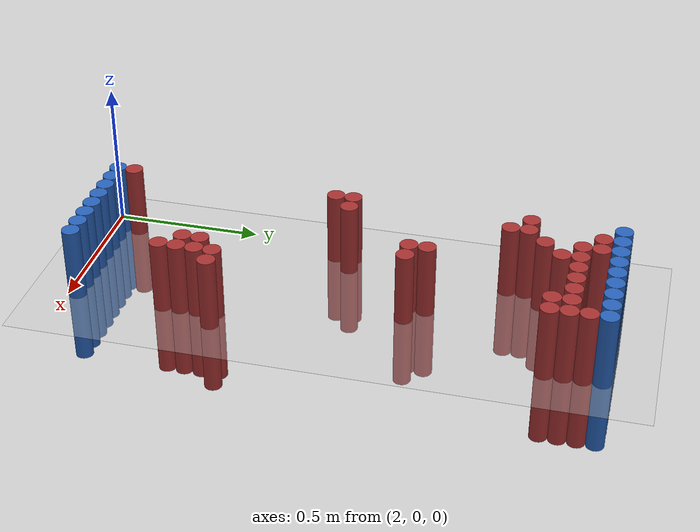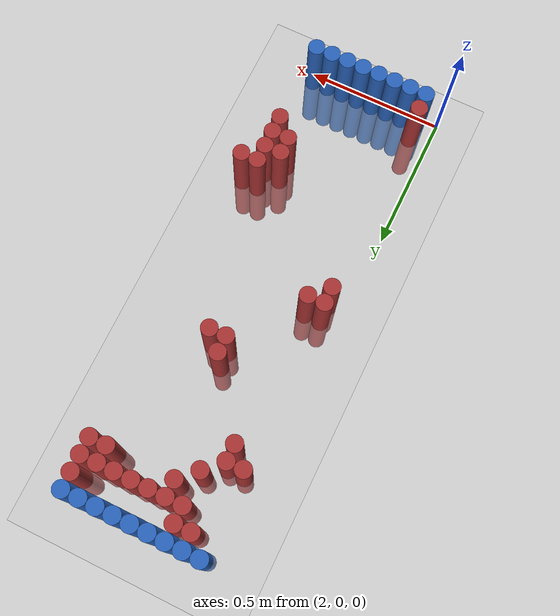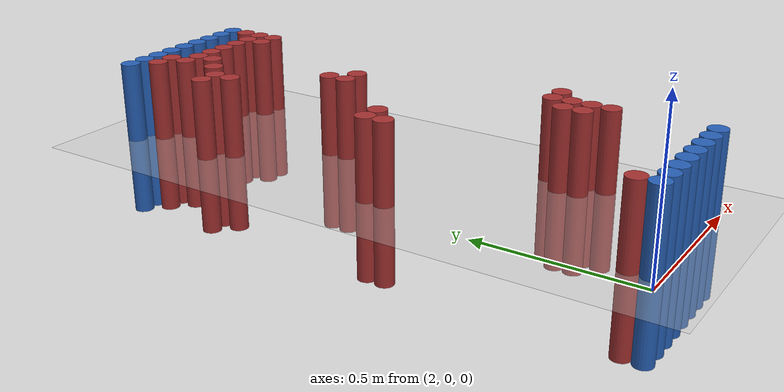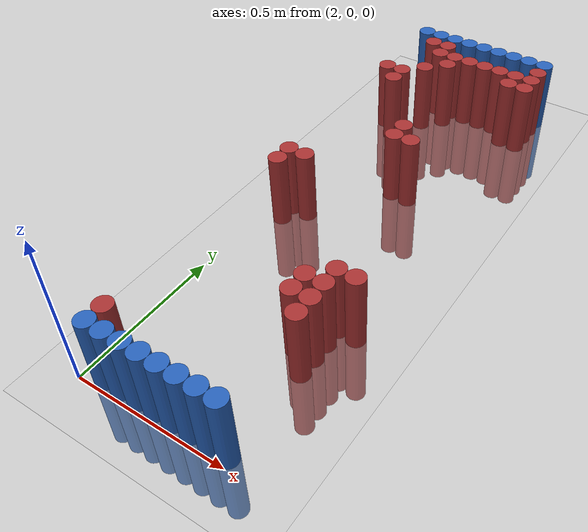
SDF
<sdf version="1.6">
 <world name="default">
  <model name="ground_plane">
   <static>1</static>
   <link name="link">
    <collision name="collision">
     <geometry><plane><normal>0 0 1</normal><size>100 100</size></plane></geometry>
     <surface><friction><ode><mu>100</mu><mu2>50</mu2></ode></friction></surface>
    </collision>
    <visual name="visual">
     <cast_shadows>0</cast_shadows>
     <geometry><plane><normal>0 0 1</normal><size>100 100</size></plane></geometry>
     <material>
      <script><uri>file://media/materials/scripts/gazebo.material</uri><name>Gazebo/Grey</name></script>
     </material>
    </visual>
   </link>
  </model>
  <model name="unit_cylinder_95">
   <static>1</static>
   <pose>2.070000 1.770000 0.000000 0.000000 0.000000 0.000000</pose>
   <link name="link">
    <inertial>
     <mass>1</mass>
     <inertia><ixx>0.145833</ixx><ixy>0</ixy><ixz>0</ixz><iyy>0.145833</iyy><iyz>0</iyz><izz>0.125</izz></inertia>
    </inertial>
    <collision name="collision">
     <geometry><cylinder><radius>0.030000</radius><length>0.5</length></cylinder></geometry>
    </collision>
    <visual name="visual">
     <geometry><cylinder><radius>0.030000</radius><length>0.5</length></cylinder></geometry>
     <material>
      <ambient>0.152000 0.379000 0.720000 1</ambient>
      <diffuse>0.152000 0.379000 0.720000 1</diffuse>
     </material>
     <material>
      <script><name>Gazebo/Grey</name><uri>file://media/materials/scripts/gazebo.material</uri></script>
     </material>
    </visual>
   </link>
  </model>
  <model name="unit_cylinder_96">
   <static>1</static>
   <pose>2.130000 1.770000 0.000000 0.000000 0.000000 0.000000</pose>
   <link name="link">
    <inertial>
     <mass>1</mass>
     <inertia><ixx>0.145833</ixx><ixy>0</ixy><ixz>0</ixz><iyy>0.145833</iyy><iyz>0</iyz><izz>0.125</izz></inertia>
    </inertial>
    <collision name="collision">
     <geometry><cylinder><radius>0.030000</radius><length>0.5</length></cylinder></geometry>
    </collision>
    <visual name="visual">
     <geometry><cylinder><radius>0.030000</radius><length>0.5</length></cylinder></geometry>
     <material>
      <ambient>0.152000 0.379000 0.720000 1</ambient>
      <diffuse>0.152000 0.379000 0.720000 1</diffuse>
     </material>
     <material>
      <script><name>Gazebo/Grey</name><uri>file://media/materials/scripts/gazebo.material</uri></script>
     </material>
    </visual>
   </link>
  </model>
  <model name="unit_cylinder_97">
   <static>1</static>
   <pose>2.190000 1.770000 0.000000 0.000000 0.000000 0.000000</pose>
   <link name="link">
    <inertial>
     <mass>1</mass>
     <inertia><ixx>0.145833</ixx><ixy>0</ixy><ixz>0</ixz><iyy>0.145833</iyy><iyz>0</iyz><izz>0.125</izz></inertia>
    </inertial>
    <collision name="collision">
     <geometry><cylinder><radius>0.030000</radius><length>0.5</length></cylinder></geometry>
    </collision>
    <visual name="visual">
     <geometry><cylinder><radius>0.030000</radius><length>0.5</length></cylinder></geometry>
     <material>
      <ambient>0.152000 0.379000 0.720000 1</ambient>
      <diffuse>0.152000 0.379000 0.720000 1</diffuse>
     </material>
     <material>
      <script><name>Gazebo/Grey</name><uri>file://media/materials/scripts/gazebo.material</uri></script>
     </material>
    </visual>
   </link>
  </model>
  <model name="unit_cylinder_98">
   <static>1</static>
   <pose>2.250000 1.770000 0.000000 0.000000 0.000000 0.000000</pose>
   <link name="link">
    <inertial>
     <mass>1</mass>
     <inertia><ixx>0.145833</ixx><ixy>0</ixy><ixz>0</ixz><iyy>0.145833</iyy><iyz>0</iyz><izz>0.125</izz></inertia>
    </inertial>
    <collision name="collision">
     <geometry><cylinder><radius>0.030000</radius><length>0.5</length></cylinder></geometry>
    </collision>
    <visual name="visual">
     <geometry><cylinder><radius>0.030000</radius><length>0.5</length></cylinder></geometry>
     <material>
      <ambient>0.152000 0.379000 0.720000 1</ambient>
      <diffuse>0.152000 0.379000 0.720000 1</diffuse>
     </material>
     <material>
      <script><name>Gazebo/Grey</name><uri>file://media/materials/scripts/gazebo.material</uri></script>
     </material>
    </visual>
   </link>
  </model>
  <model name="unit_cylinder_99">
   <static>1</static>
   <pose>2.310000 1.770000 0.000000 0.000000 0.000000 0.000000</pose>
   <link name="link">
    <inertial>
     <mass>1</mass>
     <inertia><ixx>0.145833</ixx><ixy>0</ixy><ixz>0</ixz><iyy>0.145833</iyy><iyz>0</iyz><izz>0.125</izz></inertia>
    </inertial>
    <collision name="collision">
     <geometry><cylinder><radius>0.030000</radius><length>0.5</length></cylinder></geometry>
    </collision>
    <visual name="visual">
     <geometry><cylinder><radius>0.030000</radius><length>0.5</length></cylinder></geometry>
     <material>
      <ambient>0.152000 0.379000 0.720000 1</ambient>
      <diffuse>0.152000 0.379000 0.720000 1</diffuse>
     </material>
     <material>
      <script><name>Gazebo/Grey</name><uri>file://media/materials/scripts/gazebo.material</uri></script>
     </material>
    </visual>
   </link>
  </model>
  <model name="unit_cylinder_100">
   <static>1</static>
   <pose>2.370000 1.770000 0.000000 0.000000 0.000000 0.000000</pose>
   <link name="link">
    <inertial>
     <mass>1</mass>
     <inertia><ixx>0.145833</ixx><ixy>0</ixy><ixz>0</ixz><iyy>0.145833</iyy><iyz>0</iyz><izz>0.125</izz></inertia>
    </inertial>
    <collision name="collision">
     <geometry><cylinder><radius>0.030000</radius><length>0.5</length></cylinder></geometry>
    </collision>
    <visual name="visual">
     <geometry><cylinder><radius>0.030000</radius><length>0.5</length></cylinder></geometry>
     <material>
      <ambient>0.152000 0.379000 0.720000 1</ambient>
      <diffuse>0.152000 0.379000 0.720000 1</diffuse>
     </material>
     <material>
      <script><name>Gazebo/Grey</name><uri>file://media/materials/scripts/gazebo.material</uri></script>
     </material>
    </visual>
   </link>
  </model>
  <model name="unit_cylinder_101">
   <static>1</static>
   <pose>2.430000 1.770000 0.000000 0.000000 0.000000 0.000000</pose>
   <link name="link">
    <inertial>
     <mass>1</mass>
     <inertia><ixx>0.145833</ixx><ixy>0</ixy><ixz>0</ixz><iyy>0.145833</iyy><iyz>0</iyz><izz>0.125</izz></inertia>
    </inertial>
    <collision name="collision">
     <geometry><cylinder><radius>0.030000</radius><length>0.5</length></cylinder></geometry>
    </collision>
    <visual name="visual">
     <geometry><cylinder><radius>0.030000</radius><length>0.5</length></cylinder></geometry>
     <material>
      <ambient>0.152000 0.379000 0.720000 1</ambient>
      <diffuse>0.152000 0.379000 0.720000 1</diffuse>
     </material>
     <material>
      <script><name>Gazebo/Grey</name><uri>file://media/materials/scripts/gazebo.material</uri></script>
     </material>
    </visual>
   </link>
  </model>
  <model name="unit_cylinder_102">
   <static>1</static>
   <pose>2.490000 1.770000 0.000000 0.000000 0.000000 0.000000</pose>
   <link name="link">
    <inertial>
     <mass>1</mass>
     <inertia><ixx>0.145833</ixx><ixy>0</ixy><ixz>0</ixz><iyy>0.145833</iyy><iyz>0</iyz><izz>0.125</izz></inertia>
    </inertial>
    <collision name="collision">
     <geometry><cylinder><radius>0.030000</radius><length>0.5</length></cylinder></geometry>
    </collision>
    <visual name="visual">
     <geometry><cylinder><radius>0.030000</radius><length>0.5</length></cylinder></geometry>
     <material>
      <ambient>0.152000 0.379000 0.720000 1</ambient>
      <diffuse>0.152000 0.379000 0.720000 1</diffuse>
     </material>
     <material>
      <script><name>Gazebo/Grey</name><uri>file://media/materials/scripts/gazebo.material</uri></script>
     </material>
    </visual>
   </link>
  </model>
  <model name="unit_cylinder_103">
   <static>1</static>
   <pose>2.550000 1.770000 0.000000 0.000000 0.000000 0.000000</pose>
   <link name="link">
    <inertial>
     <mass>1</mass>
     <inertia><ixx>0.145833</ixx><ixy>0</ixy><ixz>0</ixz><iyy>0.145833</iyy><iyz>0</iyz><izz>0.125</izz></inertia>
    </inertial>
    <collision name="collision">
     <geometry><cylinder><radius>0.030000</radius><length>0.5</length></cylinder></geometry>
    </collision>
    <visual name="visual">
     <geometry><cylinder><radius>0.030000</radius><length>0.5</length></cylinder></geometry>
     <material>
      <ambient>0.152000 0.379000 0.720000 1</ambient>
      <diffuse>0.152000 0.379000 0.720000 1</diffuse>
     </material>
     <material>
      <script><name>Gazebo/Grey</name><uri>file://media/materials/scripts/gazebo.material</uri></script>
     </material>
    </visual>
   </link>
  </model>
  <model name="unit_cylinder_125">
   <static>1</static>
   <pose>2.130000 1.710000 0.000000 0.000000 0.000000 0.000000</pose>
   <link name="link">
    <inertial>
     <mass>1</mass>
     <inertia><ixx>0.145833</ixx><ixy>0</ixy><ixz>0</ixz><iyy>0.145833</iyy><iyz>0</iyz><izz>0.125</izz></inertia>
    </inertial>
    <collision name="collision">
     <geometry><cylinder><radius>0.030000</radius><length>0.5</length></cylinder></geometry>
    </collision>
    <visual name="visual">
     <geometry><cylinder><radius>0.030000</radius><length>0.5</length></cylinder></geometry>
     <material>
      <ambient>0.648000 0.192000 0.192000 1</ambient>
      <diffuse>0.648000 0.192000 0.192000 1</diffuse>
     </material>
     <material>
      <script><name>Gazebo/Grey</name><uri>file://media/materials/scripts/gazebo.material</uri></script>
     </material>
    </visual>
   </link>
  </model>
  <model name="unit_cylinder_126">
   <static>1</static>
   <pose>2.190000 1.710000 0.000000 0.000000 0.000000 0.000000</pose>
   <link name="link">
    <inertial>
     <mass>1</mass>
     <inertia><ixx>0.145833</ixx><ixy>0</ixy><ixz>0</ixz><iyy>0.145833</iyy><iyz>0</iyz><izz>0.125</izz></inertia>
    </inertial>
    <collision name="collision">
     <geometry><cylinder><radius>0.030000</radius><length>0.5</length></cylinder></geometry>
    </collision>
    <visual name="visual">
     <geometry><cylinder><radius>0.030000</radius><length>0.5</length></cylinder></geometry>
     <material>
      <ambient>0.648000 0.192000 0.192000 1</ambient>
      <diffuse>0.648000 0.192000 0.192000 1</diffuse>
     </material>
     <material>
      <script><name>Gazebo/Grey</name><uri>file://media/materials/scripts/gazebo.material</uri></script>
     </material>
    </visual>
   </link>
  </model>
  <model name="unit_cylinder_127">
   <static>1</static>
   <pose>2.550000 1.710000 0.000000 0.000000 0.000000 0.000000</pose>
   <link name="link">
    <inertial>
     <mass>1</mass>
     <inertia><ixx>0.145833</ixx><ixy>0</ixy><ixz>0</ixz><iyy>0.145833</iyy><iyz>0</iyz><izz>0.125</izz></inertia>
    </inertial>
    <collision name="collision">
     <geometry><cylinder><radius>0.030000</radius><length>0.5</length></cylinder></geometry>
    </collision>
    <visual name="visual">
     <geometry><cylinder><radius>0.030000</radius><length>0.5</length></cylinder></geometry>
     <material>
      <ambient>0.648000 0.192000 0.192000 1</ambient>
      <diffuse>0.648000 0.192000 0.192000 1</diffuse>
     </material>
     <material>
      <script><name>Gazebo/Grey</name><uri>file://media/materials/scripts/gazebo.material</uri></script>
     </material>
    </visual>
   </link>
  </model>
  <model name="unit_cylinder_138">
   <static>1</static>
   <pose>2.190000 1.650000 0.000000 0.000000 0.000000 0.000000</pose>
   <link name="link">
    <inertial>
     <mass>1</mass>
     <inertia><ixx>0.145833</ixx><ixy>0</ixy><ixz>0</ixz><iyy>0.145833</iyy><iyz>0</iyz><izz>0.125</izz></inertia>
    </inertial>
    <collision name="collision">
     <geometry><cylinder><radius>0.030000</radius><length>0.5</length></cylinder></geometry>
    </collision>
    <visual name="visual">
     <geometry><cylinder><radius>0.030000</radius><length>0.5</length></cylinder></geometry>
     <material>
      <ambient>0.648000 0.192000 0.192000 1</ambient>
      <diffuse>0.648000 0.192000 0.192000 1</diffuse>
     </material>
     <material>
      <script><name>Gazebo/Grey</name><uri>file://media/materials/scripts/gazebo.material</uri></script>
     </material>
    </visual>
   </link>
  </model>
  <model name="unit_cylinder_139">
   <static>1</static>
   <pose>2.250000 1.650000 0.000000 0.000000 0.000000 0.000000</pose>
   <link name="link">
    <inertial>
     <mass>1</mass>
     <inertia><ixx>0.145833</ixx><ixy>0</ixy><ixz>0</ixz><iyy>0.145833</iyy><iyz>0</iyz><izz>0.125</izz></inertia>
    </inertial>
    <collision name="collision">
     <geometry><cylinder><radius>0.030000</radius><length>0.5</length></cylinder></geometry>
    </collision>
    <visual name="visual">
     <geometry><cylinder><radius>0.030000</radius><length>0.5</length></cylinder></geometry>
     <material>
      <ambient>0.648000 0.192000 0.192000 1</ambient>
      <diffuse>0.648000 0.192000 0.192000 1</diffuse>
     </material>
     <material>
      <script><name>Gazebo/Grey</name><uri>file://media/materials/scripts/gazebo.material</uri></script>
     </material>
    </visual>
   </link>
  </model>
  <model name="unit_cylinder_140">
   <static>1</static>
   <pose>2.310000 1.650000 0.000000 0.000000 0.000000 0.000000</pose>
   <link name="link">
    <inertial>
     <mass>1</mass>
     <inertia><ixx>0.145833</ixx><ixy>0</ixy><ixz>0</ixz><iyy>0.145833</iyy><iyz>0</iyz><izz>0.125</izz></inertia>
    </inertial>
    <collision name="collision">
     <geometry><cylinder><radius>0.030000</radius><length>0.5</length></cylinder></geometry>
    </collision>
    <visual name="visual">
     <geometry><cylinder><radius>0.030000</radius><length>0.5</length></cylinder></geometry>
     <material>
      <ambient>0.648000 0.192000 0.192000 1</ambient>
      <diffuse>0.648000 0.192000 0.192000 1</diffuse>
     </material>
     <material>
      <script><name>Gazebo/Grey</name><uri>file://media/materials/scripts/gazebo.material</uri></script>
     </material>
    </visual>
   </link>
  </model>
  <model name="unit_cylinder_141">
   <static>1</static>
   <pose>2.370000 1.650000 0.000000 0.000000 0.000000 0.000000</pose>
   <link name="link">
    <inertial>
     <mass>1</mass>
     <inertia><ixx>0.145833</ixx><ixy>0</ixy><ixz>0</ixz><iyy>0.145833</iyy><iyz>0</iyz><izz>0.125</izz></inertia>
    </inertial>
    <collision name="collision">
     <geometry><cylinder><radius>0.030000</radius><length>0.5</length></cylinder></geometry>
    </collision>
    <visual name="visual">
     <geometry><cylinder><radius>0.030000</radius><length>0.5</length></cylinder></geometry>
     <material>
      <ambient>0.648000 0.192000 0.192000 1</ambient>
      <diffuse>0.648000 0.192000 0.192000 1</diffuse>
     </material>
     <material>
      <script><name>Gazebo/Grey</name><uri>file://media/materials/scripts/gazebo.material</uri></script>
     </material>
    </visual>
   </link>
  </model>
  <model name="unit_cylinder_142">
   <static>1</static>
   <pose>2.430000 1.650000 0.000000 0.000000 0.000000 0.000000</pose>
   <link name="link">
    <inertial>
     <mass>1</mass>
     <inertia><ixx>0.145833</ixx><ixy>0</ixy><ixz>0</ixz><iyy>0.145833</iyy><iyz>0</iyz><izz>0.125</izz></inertia>
    </inertial>
    <collision name="collision">
     <geometry><cylinder><radius>0.030000</radius><length>0.5</length></cylinder></geometry>
    </collision>
    <visual name="visual">
     <geometry><cylinder><radius>0.030000</radius><length>0.5</length></cylinder></geometry>
     <material>
      <ambient>0.648000 0.192000 0.192000 1</ambient>
      <diffuse>0.648000 0.192000 0.192000 1</diffuse>
     </material>
     <material>
      <script><name>Gazebo/Grey</name><uri>file://media/materials/scripts/gazebo.material</uri></script>
     </material>
    </visual>
   </link>
  </model>
  <model name="unit_cylinder_143">
   <static>1</static>
   <pose>2.490000 1.650000 0.000000 0.000000 0.000000 0.000000</pose>
   <link name="link">
    <inertial>
     <mass>1</mass>
     <inertia><ixx>0.145833</ixx><ixy>0</ixy><ixz>0</ixz><iyy>0.145833</iyy><iyz>0</iyz><izz>0.125</izz></inertia>
    </inertial>
    <collision name="collision">
     <geometry><cylinder><radius>0.030000</radius><length>0.5</length></cylinder></geometry>
    </collision>
    <visual name="visual">
     <geometry><cylinder><radius>0.030000</radius><length>0.5</length></cylinder></geometry>
     <material>
      <ambient>0.648000 0.192000 0.192000 1</ambient>
      <diffuse>0.648000 0.192000 0.192000 1</diffuse>
     </material>
     <material>
      <script><name>Gazebo/Grey</name><uri>file://media/materials/scripts/gazebo.material</uri></script>
     </material>
    </visual>
   </link>
  </model>
  <model name="unit_cylinder_144">
   <static>1</static>
   <pose>2.550000 1.650000 0.000000 0.000000 0.000000 0.000000</pose>
   <link name="link">
    <inertial>
     <mass>1</mass>
     <inertia><ixx>0.145833</ixx><ixy>0</ixy><ixz>0</ixz><iyy>0.145833</iyy><iyz>0</iyz><izz>0.125</izz></inertia>
    </inertial>
    <collision name="collision">
     <geometry><cylinder><radius>0.030000</radius><length>0.5</length></cylinder></geometry>
    </collision>
    <visual name="visual">
     <geometry><cylinder><radius>0.030000</radius><length>0.5</length></cylinder></geometry>
     <material>
      <ambient>0.648000 0.192000 0.192000 1</ambient>
      <diffuse>0.648000 0.192000 0.192000 1</diffuse>
     </material>
     <material>
      <script><name>Gazebo/Grey</name><uri>file://media/materials/scripts/gazebo.material</uri></script>
     </material>
    </visual>
   </link>
  </model>
  <model name="unit_cylinder_145">
   <static>1</static>
   <pose>2.250000 1.590000 0.000000 0.000000 0.000000 0.000000</pose>
   <link name="link">
    <inertial>
     <mass>1</mass>
     <inertia><ixx>0.145833</ixx><ixy>0</ixy><ixz>0</ixz><iyy>0.145833</iyy><iyz>0</iyz><izz>0.125</izz></inertia>
    </inertial>
    <collision name="collision">
     <geometry><cylinder><radius>0.030000</radius><length>0.5</length></cylinder></geometry>
    </collision>
    <visual name="visual">
     <geometry><cylinder><radius>0.030000</radius><length>0.5</length></cylinder></geometry>
     <material>
      <ambient>0.648000 0.192000 0.192000 1</ambient>
      <diffuse>0.648000 0.192000 0.192000 1</diffuse>
     </material>
     <material>
      <script><name>Gazebo/Grey</name><uri>file://media/materials/scripts/gazebo.material</uri></script>
     </material>
    </visual>
   </link>
  </model>
  <model name="unit_cylinder_146">
   <static>1</static>
   <pose>2.490000 1.590000 0.000000 0.000000 0.000000 0.000000</pose>
   <link name="link">
    <inertial>
     <mass>1</mass>
     <inertia><ixx>0.145833</ixx><ixy>0</ixy><ixz>0</ixz><iyy>0.145833</iyy><iyz>0</iyz><izz>0.125</izz></inertia>
    </inertial>
    <collision name="collision">
     <geometry><cylinder><radius>0.030000</radius><length>0.5</length></cylinder></geometry>
    </collision>
    <visual name="visual">
     <geometry><cylinder><radius>0.030000</radius><length>0.5</length></cylinder></geometry>
     <material>
      <ambient>0.648000 0.192000 0.192000 1</ambient>
      <diffuse>0.648000 0.192000 0.192000 1</diffuse>
     </material>
     <material>
      <script><name>Gazebo/Grey</name><uri>file://media/materials/scripts/gazebo.material</uri></script>
     </material>
    </visual>
   </link>
  </model>
  <model name="unit_cylinder_147">
   <static>1</static>
   <pose>2.550000 1.590000 0.000000 0.000000 0.000000 0.000000</pose>
   <link name="link">
    <inertial>
     <mass>1</mass>
     <inertia><ixx>0.145833</ixx><ixy>0</ixy><ixz>0</ixz><iyy>0.145833</iyy><iyz>0</iyz><izz>0.125</izz></inertia>
    </inertial>
    <collision name="collision">
     <geometry><cylinder><radius>0.030000</radius><length>0.5</length></cylinder></geometry>
    </collision>
    <visual name="visual">
     <geometry><cylinder><radius>0.030000</radius><length>0.5</length></cylinder></geometry>
     <material>
      <ambient>0.648000 0.192000 0.192000 1</ambient>
      <diffuse>0.648000 0.192000 0.192000 1</diffuse>
     </material>
     <material>
      <script><name>Gazebo/Grey</name><uri>file://media/materials/scripts/gazebo.material</uri></script>
     </material>
    </visual>
   </link>
  </model>
  <model name="unit_cylinder_150">
   <static>1</static>
   <pose>2.190000 1.530000 0.000000 0.000000 0.000000 0.000000</pose>
   <link name="link">
    <inertial>
     <mass>1</mass>
     <inertia><ixx>0.145833</ixx><ixy>0</ixy><ixz>0</ixz><iyy>0.145833</iyy><iyz>0</iyz><izz>0.125</izz></inertia>
    </inertial>
    <collision name="collision">
     <geometry><cylinder><radius>0.030000</radius><length>0.5</length></cylinder></geometry>
    </collision>
    <visual name="visual">
     <geometry><cylinder><radius>0.030000</radius><length>0.5</length></cylinder></geometry>
     <material>
      <ambient>0.648000 0.192000 0.192000 1</ambient>
      <diffuse>0.648000 0.192000 0.192000 1</diffuse>
     </material>
     <material>
      <script><name>Gazebo/Grey</name><uri>file://media/materials/scripts/gazebo.material</uri></script>
     </material>
    </visual>
   </link>
  </model>
  <model name="unit_cylinder_159">
   <static>1</static>
   <pose>2.070000 1.470000 0.000000 0.000000 0.000000 0.000000</pose>
   <link name="link">
    <inertial>
     <mass>1</mass>
     <inertia><ixx>0.145833</ixx><ixy>0</ixy><ixz>0</ixz><iyy>0.145833</iyy><iyz>0</iyz><izz>0.125</izz></inertia>
    </inertial>
    <collision name="collision">
     <geometry><cylinder><radius>0.030000</radius><length>0.5</length></cylinder></geometry>
    </collision>
    <visual name="visual">
     <geometry><cylinder><radius>0.030000</radius><length>0.5</length></cylinder></geometry>
     <material>
      <ambient>0.648000 0.192000 0.192000 1</ambient>
      <diffuse>0.648000 0.192000 0.192000 1</diffuse>
     </material>
     <material>
      <script><name>Gazebo/Grey</name><uri>file://media/materials/scripts/gazebo.material</uri></script>
     </material>
    </visual>
   </link>
  </model>
  <model name="unit_cylinder_160">
   <static>1</static>
   <pose>2.130000 1.470000 0.000000 0.000000 0.000000 0.000000</pose>
   <link name="link">
    <inertial>
     <mass>1</mass>
     <inertia><ixx>0.145833</ixx><ixy>0</ixy><ixz>0</ixz><iyy>0.145833</iyy><iyz>0</iyz><izz>0.125</izz></inertia>
    </inertial>
    <collision name="collision">
     <geometry><cylinder><radius>0.030000</radius><length>0.5</length></cylinder></geometry>
    </collision>
    <visual name="visual">
     <geometry><cylinder><radius>0.030000</radius><length>0.5</length></cylinder></geometry>
     <material>
      <ambient>0.648000 0.192000 0.192000 1</ambient>
      <diffuse>0.648000 0.192000 0.192000 1</diffuse>
     </material>
     <material>
      <script><name>Gazebo/Grey</name><uri>file://media/materials/scripts/gazebo.material</uri></script>
     </material>
    </visual>
   </link>
  </model>
  <model name="unit_cylinder_165">
   <static>1</static>
   <pose>2.130000 1.410000 0.000000 0.000000 0.000000 0.000000</pose>
   <link name="link">
    <inertial>
     <mass>1</mass>
     <inertia><ixx>0.145833</ixx><ixy>0</ixy><ixz>0</ixz><iyy>0.145833</iyy><iyz>0</iyz><izz>0.125</izz></inertia>
    </inertial>
    <collision name="collision">
     <geometry><cylinder><radius>0.030000</radius><length>0.5</length></cylinder></geometry>
    </collision>
    <visual name="visual">
     <geometry><cylinder><radius>0.030000</radius><length>0.5</length></cylinder></geometry>
     <material>
      <ambient>0.648000 0.192000 0.192000 1</ambient>
      <diffuse>0.648000 0.192000 0.192000 1</diffuse>
     </material>
     <material>
      <script><name>Gazebo/Grey</name><uri>file://media/materials/scripts/gazebo.material</uri></script>
     </material>
    </visual>
   </link>
  </model>
  <model name="unit_cylinder_183">
   <static>1</static>
   <pose>2.310000 1.170000 0.000000 0.000000 0.000000 0.000000</pose>
   <link name="link">
    <inertial>
     <mass>1</mass>
     <inertia><ixx>0.145833</ixx><ixy>0</ixy><ixz>0</ixz><iyy>0.145833</iyy><iyz>0</iyz><izz>0.125</izz></inertia>
    </inertial>
    <collision name="collision">
     <geometry><cylinder><radius>0.030000</radius><length>0.5</length></cylinder></geometry>
    </collision>
    <visual name="visual">
     <geometry><cylinder><radius>0.030000</radius><length>0.5</length></cylinder></geometry>
     <material>
      <ambient>0.648000 0.192000 0.192000 1</ambient>
      <diffuse>0.648000 0.192000 0.192000 1</diffuse>
     </material>
     <material>
      <script><name>Gazebo/Grey</name><uri>file://media/materials/scripts/gazebo.material</uri></script>
     </material>
    </visual>
   </link>
  </model>
  <model name="unit_cylinder_187">
   <static>1</static>
   <pose>2.310000 1.110000 0.000000 0.000000 0.000000 0.000000</pose>
   <link name="link">
    <inertial>
     <mass>1</mass>
     <inertia><ixx>0.145833</ixx><ixy>0</ixy><ixz>0</ixz><iyy>0.145833</iyy><iyz>0</iyz><izz>0.125</izz></inertia>
    </inertial>
    <collision name="collision">
     <geometry><cylinder><radius>0.030000</radius><length>0.5</length></cylinder></geometry>
    </collision>
    <visual name="visual">
     <geometry><cylinder><radius>0.030000</radius><length>0.5</length></cylinder></geometry>
     <material>
      <ambient>0.648000 0.192000 0.192000 1</ambient>
      <diffuse>0.648000 0.192000 0.192000 1</diffuse>
     </material>
     <material>
      <script><name>Gazebo/Grey</name><uri>file://media/materials/scripts/gazebo.material</uri></script>
     </material>
    </visual>
   </link>
  </model>
  <model name="unit_cylinder_188">
   <static>1</static>
   <pose>2.370000 1.110000 0.000000 0.000000 0.000000 0.000000</pose>
   <link name="link">
    <inertial>
     <mass>1</mass>
     <inertia><ixx>0.145833</ixx><ixy>0</ixy><ixz>0</ixz><iyy>0.145833</iyy><iyz>0</iyz><izz>0.125</izz></inertia>
    </inertial>
    <collision name="collision">
     <geometry><cylinder><radius>0.030000</radius><length>0.5</length></cylinder></geometry>
    </collision>
    <visual name="visual">
     <geometry><cylinder><radius>0.030000</radius><length>0.5</length></cylinder></geometry>
     <material>
      <ambient>0.648000 0.192000 0.192000 1</ambient>
      <diffuse>0.648000 0.192000 0.192000 1</diffuse>
     </material>
     <material>
      <script><name>Gazebo/Grey</name><uri>file://media/materials/scripts/gazebo.material</uri></script>
     </material>
    </visual>
   </link>
  </model>
  <model name="unit_cylinder_202">
   <static>1</static>
   <pose>2.070000 0.870000 0.000000 0.000000 0.000000 0.000000</pose>
   <link name="link">
    <inertial>
     <mass>1</mass>
     <inertia><ixx>0.145833</ixx><ixy>0</ixy><ixz>0</ixz><iyy>0.145833</iyy><iyz>0</iyz><izz>0.125</izz></inertia>
    </inertial>
    <collision name="collision">
     <geometry><cylinder><radius>0.030000</radius><length>0.5</length></cylinder></geometry>
    </collision>
    <visual name="visual">
     <geometry><cylinder><radius>0.030000</radius><length>0.5</length></cylinder></geometry>
     <material>
      <ambient>0.648000 0.192000 0.192000 1</ambient>
      <diffuse>0.648000 0.192000 0.192000 1</diffuse>
     </material>
     <material>
      <script><name>Gazebo/Grey</name><uri>file://media/materials/scripts/gazebo.material</uri></script>
     </material>
    </visual>
   </link>
  </model>
  <model name="unit_cylinder_203">
   <static>1</static>
   <pose>2.130000 0.870000 0.000000 0.000000 0.000000 0.000000</pose>
   <link name="link">
    <inertial>
     <mass>1</mass>
     <inertia><ixx>0.145833</ixx><ixy>0</ixy><ixz>0</ixz><iyy>0.145833</iyy><iyz>0</iyz><izz>0.125</izz></inertia>
    </inertial>
    <collision name="collision">
     <geometry><cylinder><radius>0.030000</radius><length>0.5</length></cylinder></geometry>
    </collision>
    <visual name="visual">
     <geometry><cylinder><radius>0.030000</radius><length>0.5</length></cylinder></geometry>
     <material>
      <ambient>0.648000 0.192000 0.192000 1</ambient>
      <diffuse>0.648000 0.192000 0.192000 1</diffuse>
     </material>
     <material>
      <script><name>Gazebo/Grey</name><uri>file://media/materials/scripts/gazebo.material</uri></script>
     </material>
    </visual>
   </link>
  </model>
  <model name="unit_cylinder_207">
   <static>1</static>
   <pose>2.070000 0.810000 0.000000 0.000000 0.000000 0.000000</pose>
   <link name="link">
    <inertial>
     <mass>1</mass>
     <inertia><ixx>0.145833</ixx><ixy>0</ixy><ixz>0</ixz><iyy>0.145833</iyy><iyz>0</iyz><izz>0.125</izz></inertia>
    </inertial>
    <collision name="collision">
     <geometry><cylinder><radius>0.030000</radius><length>0.5</length></cylinder></geometry>
    </collision>
    <visual name="visual">
     <geometry><cylinder><radius>0.030000</radius><length>0.5</length></cylinder></geometry>
     <material>
      <ambient>0.648000 0.192000 0.192000 1</ambient>
      <diffuse>0.648000 0.192000 0.192000 1</diffuse>
     </material>
     <material>
      <script><name>Gazebo/Grey</name><uri>file://media/materials/scripts/gazebo.material</uri></script>
     </material>
    </visual>
   </link>
  </model>
  <model name="unit_cylinder_213">
   <static>1</static>
   <pose>2.490000 0.510000 0.000000 0.000000 0.000000 0.000000</pose>
   <link name="link">
    <inertial>
     <mass>1</mass>
     <inertia><ixx>0.145833</ixx><ixy>0</ixy><ixz>0</ixz><iyy>0.145833</iyy><iyz>0</iyz><izz>0.125</izz></inertia>
    </inertial>
    <collision name="collision">
     <geometry><cylinder><radius>0.030000</radius><length>0.5</length></cylinder></geometry>
    </collision>
    <visual name="visual">
     <geometry><cylinder><radius>0.030000</radius><length>0.5</length></cylinder></geometry>
     <material>
      <ambient>0.648000 0.192000 0.192000 1</ambient>
      <diffuse>0.648000 0.192000 0.192000 1</diffuse>
     </material>
     <material>
      <script><name>Gazebo/Grey</name><uri>file://media/materials/scripts/gazebo.material</uri></script>
     </material>
    </visual>
   </link>
  </model>
  <model name="unit_cylinder_214">
   <static>1</static>
   <pose>2.550000 0.510000 0.000000 0.000000 0.000000 0.000000</pose>
   <link name="link">
    <inertial>
     <mass>1</mass>
     <inertia><ixx>0.145833</ixx><ixy>0</ixy><ixz>0</ixz><iyy>0.145833</iyy><iyz>0</iyz><izz>0.125</izz></inertia>
    </inertial>
    <collision name="collision">
     <geometry><cylinder><radius>0.030000</radius><length>0.5</length></cylinder></geometry>
    </collision>
    <visual name="visual">
     <geometry><cylinder><radius>0.030000</radius><length>0.5</length></cylinder></geometry>
     <material>
      <ambient>0.648000 0.192000 0.192000 1</ambient>
      <diffuse>0.648000 0.192000 0.192000 1</diffuse>
     </material>
     <material>
      <script><name>Gazebo/Grey</name><uri>file://media/materials/scripts/gazebo.material</uri></script>
     </material>
    </visual>
   </link>
  </model>
  <model name="unit_cylinder_217">
   <static>1</static>
   <pose>2.430000 0.450000 0.000000 0.000000 0.000000 0.000000</pose>
   <link name="link">
    <inertial>
     <mass>1</mass>
     <inertia><ixx>0.145833</ixx><ixy>0</ixy><ixz>0</ixz><iyy>0.145833</iyy><iyz>0</iyz><izz>0.125</izz></inertia>
    </inertial>
    <collision name="collision">
     <geometry><cylinder><radius>0.030000</radius><length>0.5</length></cylinder></geometry>
    </collision>
    <visual name="visual">
     <geometry><cylinder><radius>0.030000</radius><length>0.5</length></cylinder></geometry>
     <material>
      <ambient>0.648000 0.192000 0.192000 1</ambient>
      <diffuse>0.648000 0.192000 0.192000 1</diffuse>
     </material>
     <material>
      <script><name>Gazebo/Grey</name><uri>file://media/materials/scripts/gazebo.material</uri></script>
     </material>
    </visual>
   </link>
  </model>
  <model name="unit_cylinder_218">
   <static>1</static>
   <pose>2.490000 0.450000 0.000000 0.000000 0.000000 0.000000</pose>
   <link name="link">
    <inertial>
     <mass>1</mass>
     <inertia><ixx>0.145833</ixx><ixy>0</ixy><ixz>0</ixz><iyy>0.145833</iyy><iyz>0</iyz><izz>0.125</izz></inertia>
    </inertial>
    <collision name="collision">
     <geometry><cylinder><radius>0.030000</radius><length>0.5</length></cylinder></geometry>
    </collision>
    <visual name="visual">
     <geometry><cylinder><radius>0.030000</radius><length>0.5</length></cylinder></geometry>
     <material>
      <ambient>0.648000 0.192000 0.192000 1</ambient>
      <diffuse>0.648000 0.192000 0.192000 1</diffuse>
     </material>
     <material>
      <script><name>Gazebo/Grey</name><uri>file://media/materials/scripts/gazebo.material</uri></script>
     </material>
    </visual>
   </link>
  </model>
  <model name="unit_cylinder_222">
   <static>1</static>
   <pose>2.430000 0.390000 0.000000 0.000000 0.000000 0.000000</pose>
   <link name="link">
    <inertial>
     <mass>1</mass>
     <inertia><ixx>0.145833</ixx><ixy>0</ixy><ixz>0</ixz><iyy>0.145833</iyy><iyz>0</iyz><izz>0.125</izz></inertia>
    </inertial>
    <collision name="collision">
     <geometry><cylinder><radius>0.030000</radius><length>0.5</length></cylinder></geometry>
    </collision>
    <visual name="visual">
     <geometry><cylinder><radius>0.030000</radius><length>0.5</length></cylinder></geometry>
     <material>
      <ambient>0.648000 0.192000 0.192000 1</ambient>
      <diffuse>0.648000 0.192000 0.192000 1</diffuse>
     </material>
     <material>
      <script><name>Gazebo/Grey</name><uri>file://media/materials/scripts/gazebo.material</uri></script>
     </material>
    </visual>
   </link>
  </model>
  <model name="unit_cylinder_223">
   <static>1</static>
   <pose>2.490000 0.390000 0.000000 0.000000 0.000000 0.000000</pose>
   <link name="link">
    <inertial>
     <mass>1</mass>
     <inertia><ixx>0.145833</ixx><ixy>0</ixy><ixz>0</ixz><iyy>0.145833</iyy><iyz>0</iyz><izz>0.125</izz></inertia>
    </inertial>
    <collision name="collision">
     <geometry><cylinder><radius>0.030000</radius><length>0.5</length></cylinder></geometry>
    </collision>
    <visual name="visual">
     <geometry><cylinder><radius>0.030000</radius><length>0.5</length></cylinder></geometry>
     <material>
      <ambient>0.648000 0.192000 0.192000 1</ambient>
      <diffuse>0.648000 0.192000 0.192000 1</diffuse>
     </material>
     <material>
      <script><name>Gazebo/Grey</name><uri>file://media/materials/scripts/gazebo.material</uri></script>
     </material>
    </visual>
   </link>
  </model>
  <model name="unit_cylinder_225">
   <static>1</static>
   <pose>2.490000 0.330000 0.000000 0.000000 0.000000 0.000000</pose>
   <link name="link">
    <inertial>
     <mass>1</mass>
     <inertia><ixx>0.145833</ixx><ixy>0</ixy><ixz>0</ixz><iyy>0.145833</iyy><iyz>0</iyz><izz>0.125</izz></inertia>
    </inertial>
    <collision name="collision">
     <geometry><cylinder><radius>0.030000</radius><length>0.5</length></cylinder></geometry>
    </collision>
    <visual name="visual">
     <geometry><cylinder><radius>0.030000</radius><length>0.5</length></cylinder></geometry>
     <material>
      <ambient>0.648000 0.192000 0.192000 1</ambient>
      <diffuse>0.648000 0.192000 0.192000 1</diffuse>
     </material>
     <material>
      <script><name>Gazebo/Grey</name><uri>file://media/materials/scripts/gazebo.material</uri></script>
     </material>
    </visual>
   </link>
  </model>
  <model name="unit_cylinder_245">
   <static>1</static>
   <pose>2.070000 0.090000 0.000000 0.000000 0.000000 0.000000</pose>
   <link name="link">
    <inertial>
     <mass>1</mass>
     <inertia><ixx>0.145833</ixx><ixy>0</ixy><ixz>0</ixz><iyy>0.145833</iyy><iyz>0</iyz><izz>0.125</izz></inertia>
    </inertial>
    <collision name="collision">
     <geometry><cylinder><radius>0.030000</radius><length>0.5</length></cylinder></geometry>
    </collision>
    <visual name="visual">
     <geometry><cylinder><radius>0.030000</radius><length>0.5</length></cylinder></geometry>
     <material>
      <ambient>0.648000 0.192000 0.192000 1</ambient>
      <diffuse>0.648000 0.192000 0.192000 1</diffuse>
     </material>
     <material>
      <script><name>Gazebo/Grey</name><uri>file://media/materials/scripts/gazebo.material</uri></script>
     </material>
    </visual>
   </link>
  </model>
  <model name="unit_cylinder_256">
   <static>1</static>
   <pose>2.070000 0.030000 0.000000 0.000000 0.000000 0.000000</pose>
   <link name="link">
    <inertial>
     <mass>1</mass>
     <inertia><ixx>0.145833</ixx><ixy>0</ixy><ixz>0</ixz><iyy>0.145833</iyy><iyz>0</iyz><izz>0.125</izz></inertia>
    </inertial>
    <collision name="collision">
     <geometry><cylinder><radius>0.030000</radius><length>0.5</length></cylinder></geometry>
    </collision>
    <visual name="visual">
     <geometry><cylinder><radius>0.030000</radius><length>0.5</length></cylinder></geometry>
     <material>
      <ambient>0.152000 0.379000 0.720000 1</ambient>
      <diffuse>0.152000 0.379000 0.720000 1</diffuse>
     </material>
     <material>
      <script><name>Gazebo/Grey</name><uri>file://media/materials/scripts/gazebo.material</uri></script>
     </material>
    </visual>
   </link>
  </model>
  <model name="unit_cylinder_257">
   <static>1</static>
   <pose>2.130000 0.030000 0.000000 0.000000 0.000000 0.000000</pose>
   <link name="link">
    <inertial>
     <mass>1</mass>
     <inertia><ixx>0.145833</ixx><ixy>0</ixy><ixz>0</ixz><iyy>0.145833</iyy><iyz>0</iyz><izz>0.125</izz></inertia>
    </inertial>
    <collision name="collision">
     <geometry><cylinder><radius>0.030000</radius><length>0.5</length></cylinder></geometry>
    </collision>
    <visual name="visual">
     <geometry><cylinder><radius>0.030000</radius><length>0.5</length></cylinder></geometry>
     <material>
      <ambient>0.152000 0.379000 0.720000 1</ambient>
      <diffuse>0.152000 0.379000 0.720000 1</diffuse>
     </material>
     <material>
      <script><name>Gazebo/Grey</name><uri>file://media/materials/scripts/gazebo.material</uri></script>
     </material>
    </visual>
   </link>
  </model>
  <model name="unit_cylinder_258">
   <static>1</static>
   <pose>2.190000 0.030000 0.000000 0.000000 0.000000 0.000000</pose>
   <link name="link">
    <inertial>
     <mass>1</mass>
     <inertia><ixx>0.145833</ixx><ixy>0</ixy><ixz>0</ixz><iyy>0.145833</iyy><iyz>0</iyz><izz>0.125</izz></inertia>
    </inertial>
    <collision name="collision">
     <geometry><cylinder><radius>0.030000</radius><length>0.5</length></cylinder></geometry>
    </collision>
    <visual name="visual">
     <geometry><cylinder><radius>0.030000</radius><length>0.5</length></cylinder></geometry>
     <material>
      <ambient>0.152000 0.379000 0.720000 1</ambient>
      <diffuse>0.152000 0.379000 0.720000 1</diffuse>
     </material>
     <material>
      <script><name>Gazebo/Grey</name><uri>file://media/materials/scripts/gazebo.material</uri></script>
     </material>
    </visual>
   </link>
  </model>
  <model name="unit_cylinder_259">
   <static>1</static>
   <pose>2.250000 0.030000 0.000000 0.000000 0.000000 0.000000</pose>
   <link name="link">
    <inertial>
     <mass>1</mass>
     <inertia><ixx>0.145833</ixx><ixy>0</ixy><ixz>0</ixz><iyy>0.145833</iyy><iyz>0</iyz><izz>0.125</izz></inertia>
    </inertial>
    <collision name="collision">
     <geometry><cylinder><radius>0.030000</radius><length>0.5</length></cylinder></geometry>
    </collision>
    <visual name="visual">
     <geometry><cylinder><radius>0.030000</radius><length>0.5</length></cylinder></geometry>
     <material>
      <ambient>0.152000 0.379000 0.720000 1</ambient>
      <diffuse>0.152000 0.379000 0.720000 1</diffuse>
     </material>
     <material>
      <script><name>Gazebo/Grey</name><uri>file://media/materials/scripts/gazebo.material</uri></script>
     </material>
    </visual>
   </link>
  </model>
  <model name="unit_cylinder_260">
   <static>1</static>
   <pose>2.310000 0.030000 0.000000 0.000000 0.000000 0.000000</pose>
   <link name="link">
    <inertial>
     <mass>1</mass>
     <inertia><ixx>0.145833</ixx><ixy>0</ixy><ixz>0</ixz><iyy>0.145833</iyy><iyz>0</iyz><izz>0.125</izz></inertia>
    </inertial>
    <collision name="collision">
     <geometry><cylinder><radius>0.030000</radius><length>0.5</length></cylinder></geometry>
    </collision>
    <visual name="visual">
     <geometry><cylinder><radius>0.030000</radius><length>0.5</length></cylinder></geometry>
     <material>
      <ambient>0.152000 0.379000 0.720000 1</ambient>
      <diffuse>0.152000 0.379000 0.720000 1</diffuse>
     </material>
     <material>
      <script><name>Gazebo/Grey</name><uri>file://media/materials/scripts/gazebo.material</uri></script>
     </material>
    </visual>
   </link>
  </model>
  <model name="unit_cylinder_261">
   <static>1</static>
   <pose>2.370000 0.030000 0.000000 0.000000 0.000000 0.000000</pose>
   <link name="link">
    <inertial>
     <mass>1</mass>
     <inertia><ixx>0.145833</ixx><ixy>0</ixy><ixz>0</ixz><iyy>0.145833</iyy><iyz>0</iyz><izz>0.125</izz></inertia>
    </inertial>
    <collision name="collision">
     <geometry><cylinder><radius>0.030000</radius><length>0.5</length></cylinder></geometry>
    </collision>
    <visual name="visual">
     <geometry><cylinder><radius>0.030000</radius><length>0.5</length></cylinder></geometry>
     <material>
      <ambient>0.152000 0.379000 0.720000 1</ambient>
      <diffuse>0.152000 0.379000 0.720000 1</diffuse>
     </material>
     <material>
      <script><name>Gazebo/Grey</name><uri>file://media/materials/scripts/gazebo.material</uri></script>
     </material>
    </visual>
   </link>
  </model>
  <model name="unit_cylinder_262">
   <static>1</static>
   <pose>2.430000 0.030000 0.000000 0.000000 0.000000 0.000000</pose>
   <link name="link">
    <inertial>
     <mass>1</mass>
     <inertia><ixx>0.145833</ixx><ixy>0</ixy><ixz>0</ixz><iyy>0.145833</iyy><iyz>0</iyz><izz>0.125</izz></inertia>
    </inertial>
    <collision name="collision">
     <geometry><cylinder><radius>0.030000</radius><length>0.5</length></cylinder></geometry>
    </collision>
    <visual name="visual">
     <geometry><cylinder><radius>0.030000</radius><length>0.5</length></cylinder></geometry>
     <material>
      <ambient>0.152000 0.379000 0.720000 1</ambient>
      <diffuse>0.152000 0.379000 0.720000 1</diffuse>
     </material>
     <material>
      <script><name>Gazebo/Grey</name><uri>file://media/materials/scripts/gazebo.material</uri></script>
     </material>
    </visual>
   </link>
  </model>
  <model name="unit_cylinder_263">
   <static>1</static>
   <pose>2.490000 0.030000 0.000000 0.000000 0.000000 0.000000</pose>
   <link name="link">
    <inertial>
     <mass>1</mass>
     <inertia><ixx>0.145833</ixx><ixy>0</ixy><ixz>0</ixz><iyy>0.145833</iyy><iyz>0</iyz><izz>0.125</izz></inertia>
    </inertial>
    <collision name="collision">
     <geometry><cylinder><radius>0.030000</radius><length>0.5</length></cylinder></geometry>
    </collision>
    <visual name="visual">
     <geometry><cylinder><radius>0.030000</radius><length>0.5</length></cylinder></geometry>
     <material>
      <ambient>0.152000 0.379000 0.720000 1</ambient>
      <diffuse>0.152000 0.379000 0.720000 1</diffuse>
     </material>
     <material>
      <script><name>Gazebo/Grey</name><uri>file://media/materials/scripts/gazebo.material</uri></script>
     </material>
    </visual>
   </link>
  </model>
 </world>
</sdf>
